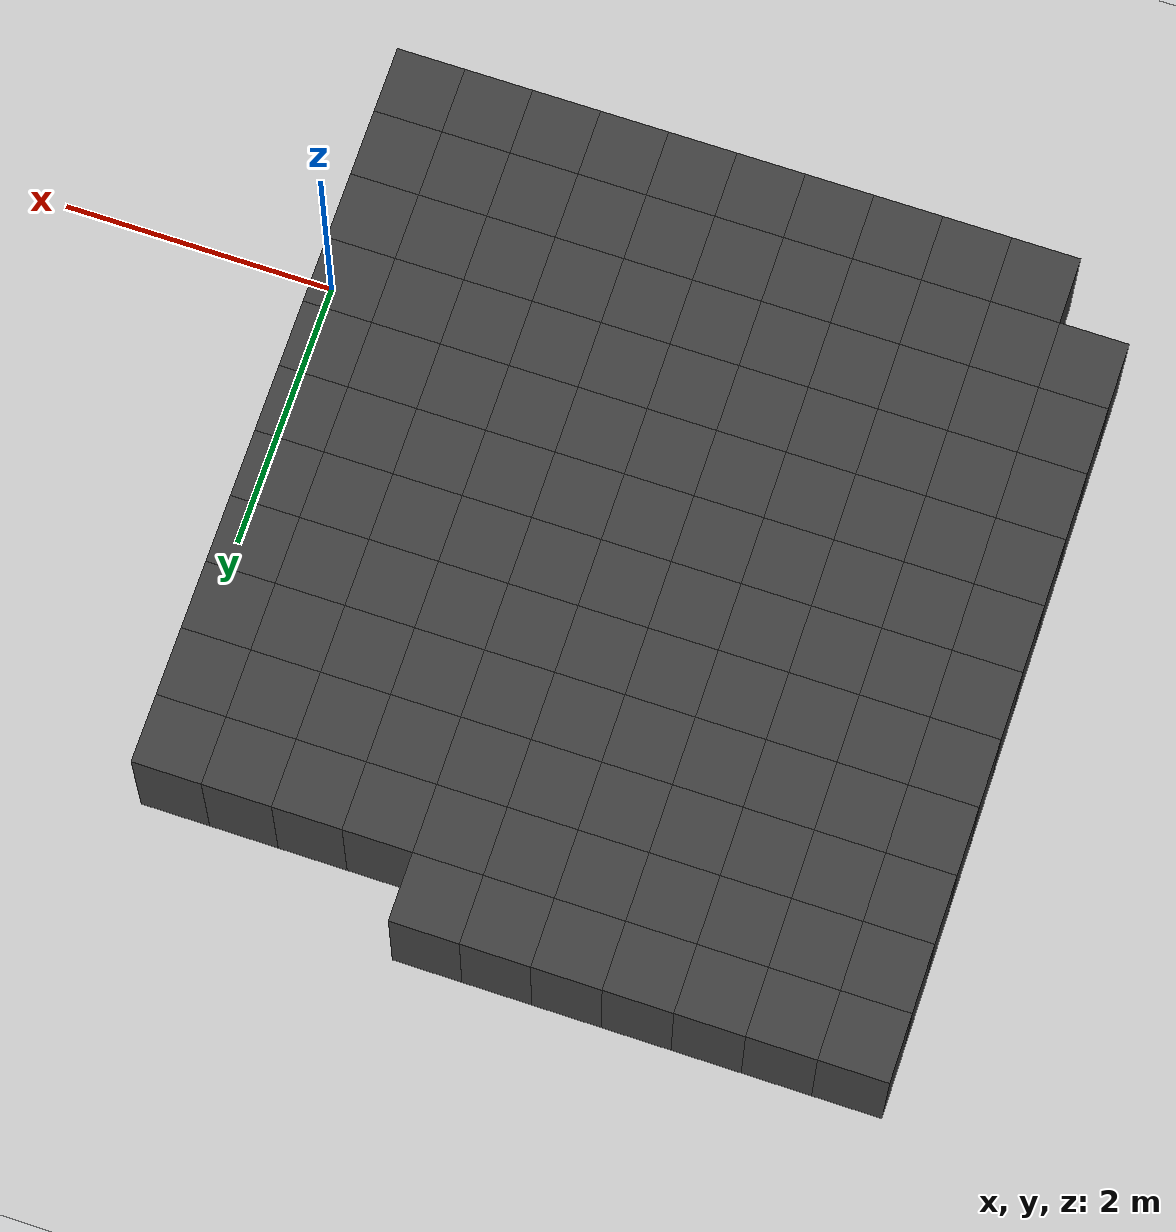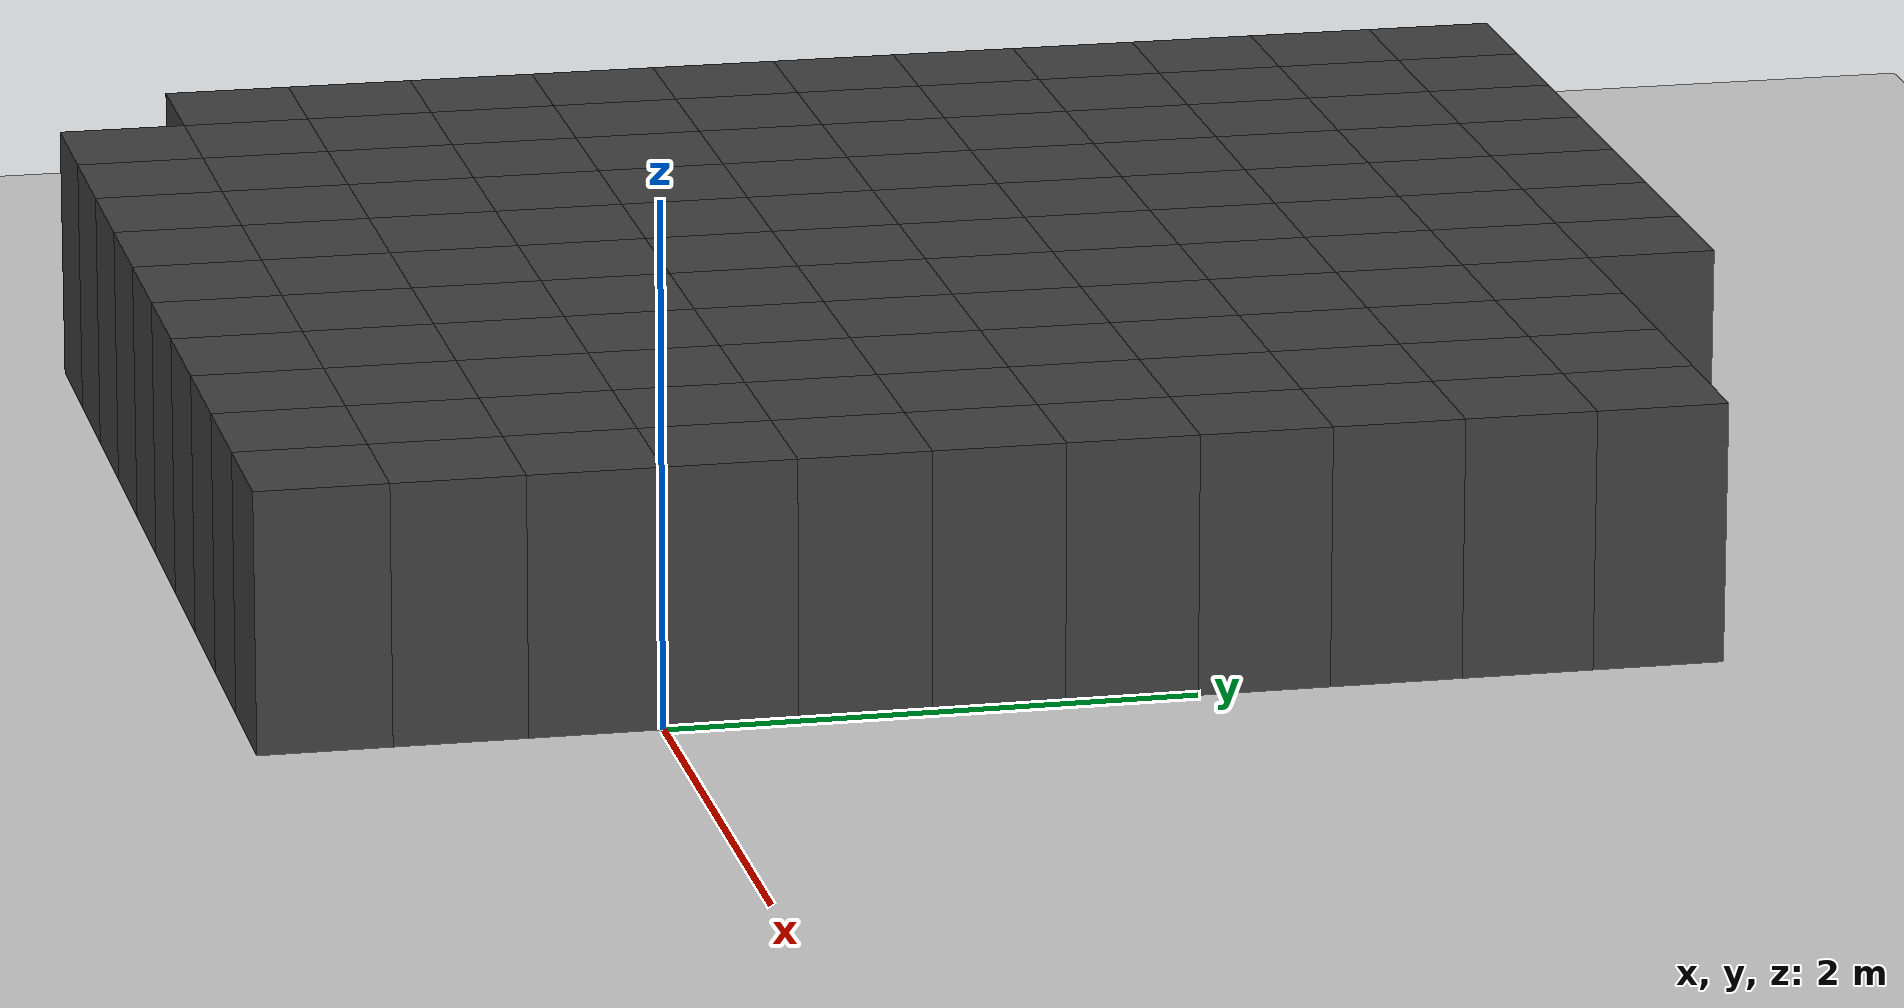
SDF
<sdf version="1.7">
 <world name="map_14056">
  <model name="ground_plane">
   <static>true</static>
   <link name="link">
    <collision name="collision">
     <geometry><plane><normal>0 0 1</normal><size>200 200</size></plane></geometry>
    </collision>
    <visual name="visual">
     <geometry><plane><normal>0 0 1</normal><size>200 200</size></plane></geometry>
     <material><ambient>0.8 0.8 0.8 1</ambient><diffuse>0.8 0.8 0.8 1</diffuse></material>
    </visual>
   </link>
  </model>
  <model name="maze_environment">
   <static>true</static>
   <link name="wall_533">
    <pose>-5.250 4.250 0.500 0 0 0</pose>
    <collision name="col"><geometry><box><size>0.5 0.5 1.0</size></box></geometry></collision>
    <visual name="vis">
     <geometry><box><size>0.5 0.5 1.0</size></box></geometry>
     <material><ambient>0.15 0.15 0.15 1</ambient><diffuse>0.25 0.25 0.25 1</diffuse></material>
    </visual>
   </link>
   <link name="wall_534">
    <pose>-4.750 4.250 0.500 0 0 0</pose>
    <collision name="col"><geometry><box><size>0.5 0.5 1.0</size></box></geometry></collision>
    <visual name="vis">
     <geometry><box><size>0.5 0.5 1.0</size></box></geometry>
     <material><ambient>0.15 0.15 0.15 1</ambient><diffuse>0.25 0.25 0.25 1</diffuse></material>
    </visual>
   </link>
   <link name="wall_535">
    <pose>-4.250 4.250 0.500 0 0 0</pose>
    <collision name="col"><geometry><box><size>0.5 0.5 1.0</size></box></geometry></collision>
    <visual name="vis">
     <geometry><box><size>0.5 0.5 1.0</size></box></geometry>
     <material><ambient>0.15 0.15 0.15 1</ambient><diffuse>0.25 0.25 0.25 1</diffuse></material>
    </visual>
   </link>
   <link name="wall_536">
    <pose>-3.750 4.250 0.500 0 0 0</pose>
    <collision name="col"><geometry><box><size>0.5 0.5 1.0</size></box></geometry></collision>
    <visual name="vis">
     <geometry><box><size>0.5 0.5 1.0</size></box></geometry>
     <material><ambient>0.15 0.15 0.15 1</ambient><diffuse>0.25 0.25 0.25 1</diffuse></material>
    </visual>
   </link>
   <link name="wall_537">
    <pose>-3.250 4.250 0.500 0 0 0</pose>
    <collision name="col"><geometry><box><size>0.5 0.5 1.0</size></box></geometry></collision>
    <visual name="vis">
     <geometry><box><size>0.5 0.5 1.0</size></box></geometry>
     <material><ambient>0.15 0.15 0.15 1</ambient><diffuse>0.25 0.25 0.25 1</diffuse></material>
    </visual>
   </link>
   <link name="wall_538">
    <pose>-2.750 4.250 0.500 0 0 0</pose>
    <collision name="col"><geometry><box><size>0.5 0.5 1.0</size></box></geometry></collision>
    <visual name="vis">
     <geometry><box><size>0.5 0.5 1.0</size></box></geometry>
     <material><ambient>0.15 0.15 0.15 1</ambient><diffuse>0.25 0.25 0.25 1</diffuse></material>
    </visual>
   </link>
   <link name="wall_539">
    <pose>-2.250 4.250 0.500 0 0 0</pose>
    <collision name="col"><geometry><box><size>0.5 0.5 1.0</size></box></geometry></collision>
    <visual name="vis">
     <geometry><box><size>0.5 0.5 1.0</size></box></geometry>
     <material><ambient>0.15 0.15 0.15 1</ambient><diffuse>0.25 0.25 0.25 1</diffuse></material>
    </visual>
   </link>
   <link name="wall_575">
    <pose>-5.250 3.750 0.500 0 0 0</pose>
    <collision name="col"><geometry><box><size>0.5 0.5 1.0</size></box></geometry></collision>
    <visual name="vis">
     <geometry><box><size>0.5 0.5 1.0</size></box></geometry>
     <material><ambient>0.15 0.15 0.15 1</ambient><diffuse>0.25 0.25 0.25 1</diffuse></material>
    </visual>
   </link>
   <link name="wall_576">
    <pose>-4.750 3.750 0.500 0 0 0</pose>
    <collision name="col"><geometry><box><size>0.5 0.5 1.0</size></box></geometry></collision>
    <visual name="vis">
     <geometry><box><size>0.5 0.5 1.0</size></box></geometry>
     <material><ambient>0.15 0.15 0.15 1</ambient><diffuse>0.25 0.25 0.25 1</diffuse></material>
    </visual>
   </link>
   <link name="wall_577">
    <pose>-4.250 3.750 0.500 0 0 0</pose>
    <collision name="col"><geometry><box><size>0.5 0.5 1.0</size></box></geometry></collision>
    <visual name="vis">
     <geometry><box><size>0.5 0.5 1.0</size></box></geometry>
     <material><ambient>0.15 0.15 0.15 1</ambient><diffuse>0.25 0.25 0.25 1</diffuse></material>
    </visual>
   </link>
   <link name="wall_578">
    <pose>-3.750 3.750 0.500 0 0 0</pose>
    <collision name="col"><geometry><box><size>0.5 0.5 1.0</size></box></geometry></collision>
    <visual name="vis">
     <geometry><box><size>0.5 0.5 1.0</size></box></geometry>
     <material><ambient>0.15 0.15 0.15 1</ambient><diffuse>0.25 0.25 0.25 1</diffuse></material>
    </visual>
   </link>
   <link name="wall_579">
    <pose>-3.250 3.750 0.500 0 0 0</pose>
    <collision name="col"><geometry><box><size>0.5 0.5 1.0</size></box></geometry></collision>
    <visual name="vis">
     <geometry><box><size>0.5 0.5 1.0</size></box></geometry>
     <material><ambient>0.15 0.15 0.15 1</ambient><diffuse>0.25 0.25 0.25 1</diffuse></material>
    </visual>
   </link>
   <link name="wall_580">
    <pose>-2.750 3.750 0.500 0 0 0</pose>
    <collision name="col"><geometry><box><size>0.5 0.5 1.0</size></box></geometry></collision>
    <visual name="vis">
     <geometry><box><size>0.5 0.5 1.0</size></box></geometry>
     <material><ambient>0.15 0.15 0.15 1</ambient><diffuse>0.25 0.25 0.25 1</diffuse></material>
    </visual>
   </link>
   <link name="wall_581">
    <pose>-2.250 3.750 0.500 0 0 0</pose>
    <collision name="col"><geometry><box><size>0.5 0.5 1.0</size></box></geometry></collision>
    <visual name="vis">
     <geometry><box><size>0.5 0.5 1.0</size></box></geometry>
     <material><ambient>0.15 0.15 0.15 1</ambient><diffuse>0.25 0.25 0.25 1</diffuse></material>
    </visual>
   </link>
   <link name="wall_582">
    <pose>-1.750 3.750 0.500 0 0 0</pose>
    <collision name="col"><geometry><box><size>0.5 0.5 1.0</size></box></geometry></collision>
    <visual name="vis">
     <geometry><box><size>0.5 0.5 1.0</size></box></geometry>
     <material><ambient>0.15 0.15 0.15 1</ambient><diffuse>0.25 0.25 0.25 1</diffuse></material>
    </visual>
   </link>
   <link name="wall_583">
    <pose>-1.250 3.750 0.500 0 0 0</pose>
    <collision name="col"><geometry><box><size>0.5 0.5 1.0</size></box></geometry></collision>
    <visual name="vis">
     <geometry><box><size>0.5 0.5 1.0</size></box></geometry>
     <material><ambient>0.15 0.15 0.15 1</ambient><diffuse>0.25 0.25 0.25 1</diffuse></material>
    </visual>
   </link>
   <link name="wall_584">
    <pose>-0.750 3.750 0.500 0 0 0</pose>
    <collision name="col"><geometry><box><size>0.5 0.5 1.0</size></box></geometry></collision>
    <visual name="vis">
     <geometry><box><size>0.5 0.5 1.0</size></box></geometry>
     <material><ambient>0.15 0.15 0.15 1</ambient><diffuse>0.25 0.25 0.25 1</diffuse></material>
    </visual>
   </link>
   <link name="wall_585">
    <pose>-0.250 3.750 0.500 0 0 0</pose>
    <collision name="col"><geometry><box><size>0.5 0.5 1.0</size></box></geometry></collision>
    <visual name="vis">
     <geometry><box><size>0.5 0.5 1.0</size></box></geometry>
     <material><ambient>0.15 0.15 0.15 1</ambient><diffuse>0.25 0.25 0.25 1</diffuse></material>
    </visual>
   </link>
   <link name="wall_612">
    <pose>-5.250 3.250 0.500 0 0 0</pose>
    <collision name="col"><geometry><box><size>0.5 0.5 1.0</size></box></geometry></collision>
    <visual name="vis">
     <geometry><box><size>0.5 0.5 1.0</size></box></geometry>
     <material><ambient>0.15 0.15 0.15 1</ambient><diffuse>0.25 0.25 0.25 1</diffuse></material>
    </visual>
   </link>
   <link name="wall_613">
    <pose>-4.750 3.250 0.500 0 0 0</pose>
    <collision name="col"><geometry><box><size>0.5 0.5 1.0</size></box></geometry></collision>
    <visual name="vis">
     <geometry><box><size>0.5 0.5 1.0</size></box></geometry>
     <material><ambient>0.15 0.15 0.15 1</ambient><diffuse>0.25 0.25 0.25 1</diffuse></material>
    </visual>
   </link>
   <link name="wall_614">
    <pose>-4.250 3.250 0.500 0 0 0</pose>
    <collision name="col"><geometry><box><size>0.5 0.5 1.0</size></box></geometry></collision>
    <visual name="vis">
     <geometry><box><size>0.5 0.5 1.0</size></box></geometry>
     <material><ambient>0.15 0.15 0.15 1</ambient><diffuse>0.25 0.25 0.25 1</diffuse></material>
    </visual>
   </link>
   <link name="wall_615">
    <pose>-3.750 3.250 0.500 0 0 0</pose>
    <collision name="col"><geometry><box><size>0.5 0.5 1.0</size></box></geometry></collision>
    <visual name="vis">
     <geometry><box><size>0.5 0.5 1.0</size></box></geometry>
     <material><ambient>0.15 0.15 0.15 1</ambient><diffuse>0.25 0.25 0.25 1</diffuse></material>
    </visual>
   </link>
   <link name="wall_616">
    <pose>-3.250 3.250 0.500 0 0 0</pose>
    <collision name="col"><geometry><box><size>0.5 0.5 1.0</size></box></geometry></collision>
    <visual name="vis">
     <geometry><box><size>0.5 0.5 1.0</size></box></geometry>
     <material><ambient>0.15 0.15 0.15 1</ambient><diffuse>0.25 0.25 0.25 1</diffuse></material>
    </visual>
   </link>
   <link name="wall_617">
    <pose>-2.750 3.250 0.500 0 0 0</pose>
    <collision name="col"><geometry><box><size>0.5 0.5 1.0</size></box></geometry></collision>
    <visual name="vis">
     <geometry><box><size>0.5 0.5 1.0</size></box></geometry>
     <material><ambient>0.15 0.15 0.15 1</ambient><diffuse>0.25 0.25 0.25 1</diffuse></material>
    </visual>
   </link>
   <link name="wall_618">
    <pose>-2.250 3.250 0.500 0 0 0</pose>
    <collision name="col"><geometry><box><size>0.5 0.5 1.0</size></box></geometry></collision>
    <visual name="vis">
     <geometry><box><size>0.5 0.5 1.0</size></box></geometry>
     <material><ambient>0.15 0.15 0.15 1</ambient><diffuse>0.25 0.25 0.25 1</diffuse></material>
    </visual>
   </link>
   <link name="wall_619">
    <pose>-1.750 3.250 0.500 0 0 0</pose>
    <collision name="col"><geometry><box><size>0.5 0.5 1.0</size></box></geometry></collision>
    <visual name="vis">
     <geometry><box><size>0.5 0.5 1.0</size></box></geometry>
     <material><ambient>0.15 0.15 0.15 1</ambient><diffuse>0.25 0.25 0.25 1</diffuse></material>
    </visual>
   </link>
   <link name="wall_620">
    <pose>-1.250 3.250 0.500 0 0 0</pose>
    <collision name="col"><geometry><box><size>0.5 0.5 1.0</size></box></geometry></collision>
    <visual name="vis">
     <geometry><box><size>0.5 0.5 1.0</size></box></geometry>
     <material><ambient>0.15 0.15 0.15 1</ambient><diffuse>0.25 0.25 0.25 1</diffuse></material>
    </visual>
   </link>
   <link name="wall_621">
    <pose>-0.750 3.250 0.500 0 0 0</pose>
    <collision name="col"><geometry><box><size>0.5 0.5 1.0</size></box></geometry></collision>
    <visual name="vis">
     <geometry><box><size>0.5 0.5 1.0</size></box></geometry>
     <material><ambient>0.15 0.15 0.15 1</ambient><diffuse>0.25 0.25 0.25 1</diffuse></material>
    </visual>
   </link>
   <link name="wall_622">
    <pose>-0.250 3.250 0.500 0 0 0</pose>
    <collision name="col"><geometry><box><size>0.5 0.5 1.0</size></box></geometry></collision>
    <visual name="vis">
     <geometry><box><size>0.5 0.5 1.0</size></box></geometry>
     <material><ambient>0.15 0.15 0.15 1</ambient><diffuse>0.25 0.25 0.25 1</diffuse></material>
    </visual>
   </link>
   <link name="wall_646">
    <pose>-5.250 2.750 0.500 0 0 0</pose>
    <collision name="col"><geometry><box><size>0.5 0.5 1.0</size></box></geometry></collision>
    <visual name="vis">
     <geometry><box><size>0.5 0.5 1.0</size></box></geometry>
     <material><ambient>0.15 0.15 0.15 1</ambient><diffuse>0.25 0.25 0.25 1</diffuse></material>
    </visual>
   </link>
   <link name="wall_647">
    <pose>-4.750 2.750 0.500 0 0 0</pose>
    <collision name="col"><geometry><box><size>0.5 0.5 1.0</size></box></geometry></collision>
    <visual name="vis">
     <geometry><box><size>0.5 0.5 1.0</size></box></geometry>
     <material><ambient>0.15 0.15 0.15 1</ambient><diffuse>0.25 0.25 0.25 1</diffuse></material>
    </visual>
   </link>
   <link name="wall_648">
    <pose>-4.250 2.750 0.500 0 0 0</pose>
    <collision name="col"><geometry><box><size>0.5 0.5 1.0</size></box></geometry></collision>
    <visual name="vis">
     <geometry><box><size>0.5 0.5 1.0</size></box></geometry>
     <material><ambient>0.15 0.15 0.15 1</ambient><diffuse>0.25 0.25 0.25 1</diffuse></material>
    </visual>
   </link>
   <link name="wall_649">
    <pose>-3.750 2.750 0.500 0 0 0</pose>
    <collision name="col"><geometry><box><size>0.5 0.5 1.0</size></box></geometry></collision>
    <visual name="vis">
     <geometry><box><size>0.5 0.5 1.0</size></box></geometry>
     <material><ambient>0.15 0.15 0.15 1</ambient><diffuse>0.25 0.25 0.25 1</diffuse></material>
    </visual>
   </link>
   <link name="wall_650">
    <pose>-3.250 2.750 0.500 0 0 0</pose>
    <collision name="col"><geometry><box><size>0.5 0.5 1.0</size></box></geometry></collision>
    <visual name="vis">
     <geometry><box><size>0.5 0.5 1.0</size></box></geometry>
     <material><ambient>0.15 0.15 0.15 1</ambient><diffuse>0.25 0.25 0.25 1</diffuse></material>
    </visual>
   </link>
   <link name="wall_651">
    <pose>-2.750 2.750 0.500 0 0 0</pose>
    <collision name="col"><geometry><box><size>0.5 0.5 1.0</size></box></geometry></collision>
    <visual name="vis">
     <geometry><box><size>0.5 0.5 1.0</size></box></geometry>
     <material><ambient>0.15 0.15 0.15 1</ambient><diffuse>0.25 0.25 0.25 1</diffuse></material>
    </visual>
   </link>
   <link name="wall_652">
    <pose>-2.250 2.750 0.500 0 0 0</pose>
    <collision name="col"><geometry><box><size>0.5 0.5 1.0</size></box></geometry></collision>
    <visual name="vis">
     <geometry><box><size>0.5 0.5 1.0</size></box></geometry>
     <material><ambient>0.15 0.15 0.15 1</ambient><diffuse>0.25 0.25 0.25 1</diffuse></material>
    </visual>
   </link>
   <link name="wall_653">
    <pose>-1.750 2.750 0.500 0 0 0</pose>
    <collision name="col"><geometry><box><size>0.5 0.5 1.0</size></box></geometry></collision>
    <visual name="vis">
     <geometry><box><size>0.5 0.5 1.0</size></box></geometry>
     <material><ambient>0.15 0.15 0.15 1</ambient><diffuse>0.25 0.25 0.25 1</diffuse></material>
    </visual>
   </link>
   <link name="wall_654">
    <pose>-1.250 2.750 0.500 0 0 0</pose>
    <collision name="col"><geometry><box><size>0.5 0.5 1.0</size></box></geometry></collision>
    <visual name="vis">
     <geometry><box><size>0.5 0.5 1.0</size></box></geometry>
     <material><ambient>0.15 0.15 0.15 1</ambient><diffuse>0.25 0.25 0.25 1</diffuse></material>
    </visual>
   </link>
   <link name="wall_655">
    <pose>-0.750 2.750 0.500 0 0 0</pose>
    <collision name="col"><geometry><box><size>0.5 0.5 1.0</size></box></geometry></collision>
    <visual name="vis">
     <geometry><box><size>0.5 0.5 1.0</size></box></geometry>
     <material><ambient>0.15 0.15 0.15 1</ambient><diffuse>0.25 0.25 0.25 1</diffuse></material>
    </visual>
   </link>
   <link name="wall_656">
    <pose>-0.250 2.750 0.500 0 0 0</pose>
    <collision name="col"><geometry><box><size>0.5 0.5 1.0</size></box></geometry></collision>
    <visual name="vis">
     <geometry><box><size>0.5 0.5 1.0</size></box></geometry>
     <material><ambient>0.15 0.15 0.15 1</ambient><diffuse>0.25 0.25 0.25 1</diffuse></material>
    </visual>
   </link>
   <link name="wall_686">
    <pose>-5.250 2.250 0.500 0 0 0</pose>
    <collision name="col"><geometry><box><size>0.5 0.5 1.0</size></box></geometry></collision>
    <visual name="vis">
     <geometry><box><size>0.5 0.5 1.0</size></box></geometry>
     <material><ambient>0.15 0.15 0.15 1</ambient><diffuse>0.25 0.25 0.25 1</diffuse></material>
    </visual>
   </link>
   <link name="wall_687">
    <pose>-4.750 2.250 0.500 0 0 0</pose>
    <collision name="col"><geometry><box><size>0.5 0.5 1.0</size></box></geometry></collision>
    <visual name="vis">
     <geometry><box><size>0.5 0.5 1.0</size></box></geometry>
     <material><ambient>0.15 0.15 0.15 1</ambient><diffuse>0.25 0.25 0.25 1</diffuse></material>
    </visual>
   </link>
   <link name="wall_688">
    <pose>-4.250 2.250 0.500 0 0 0</pose>
    <collision name="col"><geometry><box><size>0.5 0.5 1.0</size></box></geometry></collision>
    <visual name="vis">
     <geometry><box><size>0.5 0.5 1.0</size></box></geometry>
     <material><ambient>0.15 0.15 0.15 1</ambient><diffuse>0.25 0.25 0.25 1</diffuse></material>
    </visual>
   </link>
   <link name="wall_689">
    <pose>-3.750 2.250 0.500 0 0 0</pose>
    <collision name="col"><geometry><box><size>0.5 0.5 1.0</size></box></geometry></collision>
    <visual name="vis">
     <geometry><box><size>0.5 0.5 1.0</size></box></geometry>
     <material><ambient>0.15 0.15 0.15 1</ambient><diffuse>0.25 0.25 0.25 1</diffuse></material>
    </visual>
   </link>
   <link name="wall_690">
    <pose>-3.250 2.250 0.500 0 0 0</pose>
    <collision name="col"><geometry><box><size>0.5 0.5 1.0</size></box></geometry></collision>
    <visual name="vis">
     <geometry><box><size>0.5 0.5 1.0</size></box></geometry>
     <material><ambient>0.15 0.15 0.15 1</ambient><diffuse>0.25 0.25 0.25 1</diffuse></material>
    </visual>
   </link>
   <link name="wall_691">
    <pose>-2.750 2.250 0.500 0 0 0</pose>
    <collision name="col"><geometry><box><size>0.5 0.5 1.0</size></box></geometry></collision>
    <visual name="vis">
     <geometry><box><size>0.5 0.5 1.0</size></box></geometry>
     <material><ambient>0.15 0.15 0.15 1</ambient><diffuse>0.25 0.25 0.25 1</diffuse></material>
    </visual>
   </link>
   <link name="wall_692">
    <pose>-2.250 2.250 0.500 0 0 0</pose>
    <collision name="col"><geometry><box><size>0.5 0.5 1.0</size></box></geometry></collision>
    <visual name="vis">
     <geometry><box><size>0.5 0.5 1.0</size></box></geometry>
     <material><ambient>0.15 0.15 0.15 1</ambient><diffuse>0.25 0.25 0.25 1</diffuse></material>
    </visual>
   </link>
   <link name="wall_693">
    <pose>-1.750 2.250 0.500 0 0 0</pose>
    <collision name="col"><geometry><box><size>0.5 0.5 1.0</size></box></geometry></collision>
    <visual name="vis">
     <geometry><box><size>0.5 0.5 1.0</size></box></geometry>
     <material><ambient>0.15 0.15 0.15 1</ambient><diffuse>0.25 0.25 0.25 1</diffuse></material>
    </visual>
   </link>
   <link name="wall_694">
    <pose>-1.250 2.250 0.500 0 0 0</pose>
    <collision name="col"><geometry><box><size>0.5 0.5 1.0</size></box></geometry></collision>
    <visual name="vis">
     <geometry><box><size>0.5 0.5 1.0</size></box></geometry>
     <material><ambient>0.15 0.15 0.15 1</ambient><diffuse>0.25 0.25 0.25 1</diffuse></material>
    </visual>
   </link>
   <link name="wall_695">
    <pose>-0.750 2.250 0.500 0 0 0</pose>
    <collision name="col"><geometry><box><size>0.5 0.5 1.0</size></box></geometry></collision>
    <visual name="vis">
     <geometry><box><size>0.5 0.5 1.0</size></box></geometry>
     <material><ambient>0.15 0.15 0.15 1</ambient><diffuse>0.25 0.25 0.25 1</diffuse></material>
    </visual>
   </link>
   <link name="wall_696">
    <pose>-0.250 2.250 0.500 0 0 0</pose>
    <collision name="col"><geometry><box><size>0.5 0.5 1.0</size></box></geometry></collision>
    <visual name="vis">
     <geometry><box><size>0.5 0.5 1.0</size></box></geometry>
     <material><ambient>0.15 0.15 0.15 1</ambient><diffuse>0.25 0.25 0.25 1</diffuse></material>
    </visual>
   </link>
   <link name="wall_727">
    <pose>-5.250 1.750 0.500 0 0 0</pose>
    <collision name="col"><geometry><box><size>0.5 0.5 1.0</size></box></geometry></collision>
    <visual name="vis">
     <geometry><box><size>0.5 0.5 1.0</size></box></geometry>
     <material><ambient>0.15 0.15 0.15 1</ambient><diffuse>0.25 0.25 0.25 1</diffuse></material>
    </visual>
   </link>
   <link name="wall_728">
    <pose>-4.750 1.750 0.500 0 0 0</pose>
    <collision name="col"><geometry><box><size>0.5 0.5 1.0</size></box></geometry></collision>
    <visual name="vis">
     <geometry><box><size>0.5 0.5 1.0</size></box></geometry>
     <material><ambient>0.15 0.15 0.15 1</ambient><diffuse>0.25 0.25 0.25 1</diffuse></material>
    </visual>
   </link>
   <link name="wall_729">
    <pose>-4.250 1.750 0.500 0 0 0</pose>
    <collision name="col"><geometry><box><size>0.5 0.5 1.0</size></box></geometry></collision>
    <visual name="vis">
     <geometry><box><size>0.5 0.5 1.0</size></box></geometry>
     <material><ambient>0.15 0.15 0.15 1</ambient><diffuse>0.25 0.25 0.25 1</diffuse></material>
    </visual>
   </link>
   <link name="wall_730">
    <pose>-3.750 1.750 0.500 0 0 0</pose>
    <collision name="col"><geometry><box><size>0.5 0.5 1.0</size></box></geometry></collision>
    <visual name="vis">
     <geometry><box><size>0.5 0.5 1.0</size></box></geometry>
     <material><ambient>0.15 0.15 0.15 1</ambient><diffuse>0.25 0.25 0.25 1</diffuse></material>
    </visual>
   </link>
   <link name="wall_731">
    <pose>-3.250 1.750 0.500 0 0 0</pose>
    <collision name="col"><geometry><box><size>0.5 0.5 1.0</size></box></geometry></collision>
    <visual name="vis">
     <geometry><box><size>0.5 0.5 1.0</size></box></geometry>
     <material><ambient>0.15 0.15 0.15 1</ambient><diffuse>0.25 0.25 0.25 1</diffuse></material>
    </visual>
   </link>
   <link name="wall_732">
    <pose>-2.750 1.750 0.500 0 0 0</pose>
    <collision name="col"><geometry><box><size>0.5 0.5 1.0</size></box></geometry></collision>
    <visual name="vis">
     <geometry><box><size>0.5 0.5 1.0</size></box></geometry>
     <material><ambient>0.15 0.15 0.15 1</ambient><diffuse>0.25 0.25 0.25 1</diffuse></material>
    </visual>
   </link>
   <link name="wall_733">
    <pose>-2.250 1.750 0.500 0 0 0</pose>
    <collision name="col"><geometry><box><size>0.5 0.5 1.0</size></box></geometry></collision>
    <visual name="vis">
     <geometry><box><size>0.5 0.5 1.0</size></box></geometry>
     <material><ambient>0.15 0.15 0.15 1</ambient><diffuse>0.25 0.25 0.25 1</diffuse></material>
    </visual>
   </link>
   <link name="wall_734">
    <pose>-1.750 1.750 0.500 0 0 0</pose>
    <collision name="col"><geometry><box><size>0.5 0.5 1.0</size></box></geometry></collision>
    <visual name="vis">
     <geometry><box><size>0.5 0.5 1.0</size></box></geometry>
     <material><ambient>0.15 0.15 0.15 1</ambient><diffuse>0.25 0.25 0.25 1</diffuse></material>
    </visual>
   </link>
   <link name="wall_735">
    <pose>-1.250 1.750 0.500 0 0 0</pose>
    <collision name="col"><geometry><box><size>0.5 0.5 1.0</size></box></geometry></collision>
    <visual name="vis">
     <geometry><box><size>0.5 0.5 1.0</size></box></geometry>
     <material><ambient>0.15 0.15 0.15 1</ambient><diffuse>0.25 0.25 0.25 1</diffuse></material>
    </visual>
   </link>
   <link name="wall_736">
    <pose>-0.750 1.750 0.500 0 0 0</pose>
    <collision name="col"><geometry><box><size>0.5 0.5 1.0</size></box></geometry></collision>
    <visual name="vis">
     <geometry><box><size>0.5 0.5 1.0</size></box></geometry>
     <material><ambient>0.15 0.15 0.15 1</ambient><diffuse>0.25 0.25 0.25 1</diffuse></material>
    </visual>
   </link>
   <link name="wall_737">
    <pose>-0.250 1.750 0.500 0 0 0</pose>
    <collision name="col"><geometry><box><size>0.5 0.5 1.0</size></box></geometry></collision>
    <visual name="vis">
     <geometry><box><size>0.5 0.5 1.0</size></box></geometry>
     <material><ambient>0.15 0.15 0.15 1</ambient><diffuse>0.25 0.25 0.25 1</diffuse></material>
    </visual>
   </link>
   <link name="wall_768">
    <pose>-5.250 1.250 0.500 0 0 0</pose>
    <collision name="col"><geometry><box><size>0.5 0.5 1.0</size></box></geometry></collision>
    <visual name="vis">
     <geometry><box><size>0.5 0.5 1.0</size></box></geometry>
     <material><ambient>0.15 0.15 0.15 1</ambient><diffuse>0.25 0.25 0.25 1</diffuse></material>
    </visual>
   </link>
   <link name="wall_769">
    <pose>-4.750 1.250 0.500 0 0 0</pose>
    <collision name="col"><geometry><box><size>0.5 0.5 1.0</size></box></geometry></collision>
    <visual name="vis">
     <geometry><box><size>0.5 0.5 1.0</size></box></geometry>
     <material><ambient>0.15 0.15 0.15 1</ambient><diffuse>0.25 0.25 0.25 1</diffuse></material>
    </visual>
   </link>
   <link name="wall_770">
    <pose>-4.250 1.250 0.500 0 0 0</pose>
    <collision name="col"><geometry><box><size>0.5 0.5 1.0</size></box></geometry></collision>
    <visual name="vis">
     <geometry><box><size>0.5 0.5 1.0</size></box></geometry>
     <material><ambient>0.15 0.15 0.15 1</ambient><diffuse>0.25 0.25 0.25 1</diffuse></material>
    </visual>
   </link>
   <link name="wall_771">
    <pose>-3.750 1.250 0.500 0 0 0</pose>
    <collision name="col"><geometry><box><size>0.5 0.5 1.0</size></box></geometry></collision>
    <visual name="vis">
     <geometry><box><size>0.5 0.5 1.0</size></box></geometry>
     <material><ambient>0.15 0.15 0.15 1</ambient><diffuse>0.25 0.25 0.25 1</diffuse></material>
    </visual>
   </link>
   <link name="wall_772">
    <pose>-3.250 1.250 0.500 0 0 0</pose>
    <collision name="col"><geometry><box><size>0.5 0.5 1.0</size></box></geometry></collision>
    <visual name="vis">
     <geometry><box><size>0.5 0.5 1.0</size></box></geometry>
     <material><ambient>0.15 0.15 0.15 1</ambient><diffuse>0.25 0.25 0.25 1</diffuse></material>
    </visual>
   </link>
   <link name="wall_773">
    <pose>-2.750 1.250 0.500 0 0 0</pose>
    <collision name="col"><geometry><box><size>0.5 0.5 1.0</size></box></geometry></collision>
    <visual name="vis">
     <geometry><box><size>0.5 0.5 1.0</size></box></geometry>
     <material><ambient>0.15 0.15 0.15 1</ambient><diffuse>0.25 0.25 0.25 1</diffuse></material>
    </visual>
   </link>
   <link name="wall_774">
    <pose>-2.250 1.250 0.500 0 0 0</pose>
    <collision name="col"><geometry><box><size>0.5 0.5 1.0</size></box></geometry></collision>
    <visual name="vis">
     <geometry><box><size>0.5 0.5 1.0</size></box></geometry>
     <material><ambient>0.15 0.15 0.15 1</ambient><diffuse>0.25 0.25 0.25 1</diffuse></material>
    </visual>
   </link>
   <link name="wall_775">
    <pose>-1.750 1.250 0.500 0 0 0</pose>
    <collision name="col"><geometry><box><size>0.5 0.5 1.0</size></box></geometry></collision>
    <visual name="vis">
     <geometry><box><size>0.5 0.5 1.0</size></box></geometry>
     <material><ambient>0.15 0.15 0.15 1</ambient><diffuse>0.25 0.25 0.25 1</diffuse></material>
    </visual>
   </link>
   <link name="wall_776">
    <pose>-1.250 1.250 0.500 0 0 0</pose>
    <collision name="col"><geometry><box><size>0.5 0.5 1.0</size></box></geometry></collision>
    <visual name="vis">
     <geometry><box><size>0.5 0.5 1.0</size></box></geometry>
     <material><ambient>0.15 0.15 0.15 1</ambient><diffuse>0.25 0.25 0.25 1</diffuse></material>
    </visual>
   </link>
   <link name="wall_777">
    <pose>-0.750 1.250 0.500 0 0 0</pose>
    <collision name="col"><geometry><box><size>0.5 0.5 1.0</size></box></geometry></collision>
    <visual name="vis">
     <geometry><box><size>0.5 0.5 1.0</size></box></geometry>
     <material><ambient>0.15 0.15 0.15 1</ambient><diffuse>0.25 0.25 0.25 1</diffuse></material>
    </visual>
   </link>
   <link name="wall_778">
    <pose>-0.250 1.250 0.500 0 0 0</pose>
    <collision name="col"><geometry><box><size>0.5 0.5 1.0</size></box></geometry></collision>
    <visual name="vis">
     <geometry><box><size>0.5 0.5 1.0</size></box></geometry>
     <material><ambient>0.15 0.15 0.15 1</ambient><diffuse>0.25 0.25 0.25 1</diffuse></material>
    </visual>
   </link>
   <link name="wall_809">
    <pose>-5.250 0.750 0.500 0 0 0</pose>
    <collision name="col"><geometry><box><size>0.5 0.5 1.0</size></box></geometry></collision>
    <visual name="vis">
     <geometry><box><size>0.5 0.5 1.0</size></box></geometry>
     <material><ambient>0.15 0.15 0.15 1</ambient><diffuse>0.25 0.25 0.25 1</diffuse></material>
    </visual>
   </link>
   <link name="wall_810">
    <pose>-4.750 0.750 0.500 0 0 0</pose>
    <collision name="col"><geometry><box><size>0.5 0.5 1.0</size></box></geometry></collision>
    <visual name="vis">
     <geometry><box><size>0.5 0.5 1.0</size></box></geometry>
     <material><ambient>0.15 0.15 0.15 1</ambient><diffuse>0.25 0.25 0.25 1</diffuse></material>
    </visual>
   </link>
   <link name="wall_811">
    <pose>-4.250 0.750 0.500 0 0 0</pose>
    <collision name="col"><geometry><box><size>0.5 0.5 1.0</size></box></geometry></collision>
    <visual name="vis">
     <geometry><box><size>0.5 0.5 1.0</size></box></geometry>
     <material><ambient>0.15 0.15 0.15 1</ambient><diffuse>0.25 0.25 0.25 1</diffuse></material>
    </visual>
   </link>
   <link name="wall_812">
    <pose>-3.750 0.750 0.500 0 0 0</pose>
    <collision name="col"><geometry><box><size>0.5 0.5 1.0</size></box></geometry></collision>
    <visual name="vis">
     <geometry><box><size>0.5 0.5 1.0</size></box></geometry>
     <material><ambient>0.15 0.15 0.15 1</ambient><diffuse>0.25 0.25 0.25 1</diffuse></material>
    </visual>
   </link>
   <link name="wall_813">
    <pose>-3.250 0.750 0.500 0 0 0</pose>
    <collision name="col"><geometry><box><size>0.5 0.5 1.0</size></box></geometry></collision>
    <visual name="vis">
     <geometry><box><size>0.5 0.5 1.0</size></box></geometry>
     <material><ambient>0.15 0.15 0.15 1</ambient><diffuse>0.25 0.25 0.25 1</diffuse></material>
    </visual>
   </link>
   <link name="wall_814">
    <pose>-2.750 0.750 0.500 0 0 0</pose>
    <collision name="col"><geometry><box><size>0.5 0.5 1.0</size></box></geometry></collision>
    <visual name="vis">
     <geometry><box><size>0.5 0.5 1.0</size></box></geometry>
     <material><ambient>0.15 0.15 0.15 1</ambient><diffuse>0.25 0.25 0.25 1</diffuse></material>
    </visual>
   </link>
   <link name="wall_815">
    <pose>-2.250 0.750 0.500 0 0 0</pose>
    <collision name="col"><geometry><box><size>0.5 0.5 1.0</size></box></geometry></collision>
    <visual name="vis">
     <geometry><box><size>0.5 0.5 1.0</size></box></geometry>
     <material><ambient>0.15 0.15 0.15 1</ambient><diffuse>0.25 0.25 0.25 1</diffuse></material>
    </visual>
   </link>
   <link name="wall_816">
    <pose>-1.750 0.750 0.500 0 0 0</pose>
    <collision name="col"><geometry><box><size>0.5 0.5 1.0</size></box></geometry></collision>
    <visual name="vis">
     <geometry><box><size>0.5 0.5 1.0</size></box></geometry>
     <material><ambient>0.15 0.15 0.15 1</ambient><diffuse>0.25 0.25 0.25 1</diffuse></material>
    </visual>
   </link>
   <link name="wall_817">
    <pose>-1.250 0.750 0.500 0 0 0</pose>
    <collision name="col"><geometry><box><size>0.5 0.5 1.0</size></box></geometry></collision>
    <visual name="vis">
     <geometry><box><size>0.5 0.5 1.0</size></box></geometry>
     <material><ambient>0.15 0.15 0.15 1</ambient><diffuse>0.25 0.25 0.25 1</diffuse></material>
    </visual>
   </link>
   <link name="wall_818">
    <pose>-0.750 0.750 0.500 0 0 0</pose>
    <collision name="col"><geometry><box><size>0.5 0.5 1.0</size></box></geometry></collision>
    <visual name="vis">
     <geometry><box><size>0.5 0.5 1.0</size></box></geometry>
     <material><ambient>0.15 0.15 0.15 1</ambient><diffuse>0.25 0.25 0.25 1</diffuse></material>
    </visual>
   </link>
   <link name="wall_819">
    <pose>-0.250 0.750 0.500 0 0 0</pose>
    <collision name="col"><geometry><box><size>0.5 0.5 1.0</size></box></geometry></collision>
    <visual name="vis">
     <geometry><box><size>0.5 0.5 1.0</size></box></geometry>
     <material><ambient>0.15 0.15 0.15 1</ambient><diffuse>0.25 0.25 0.25 1</diffuse></material>
    </visual>
   </link>
   <link name="wall_850">
    <pose>-5.250 0.250 0.500 0 0 0</pose>
    <collision name="col"><geometry><box><size>0.5 0.5 1.0</size></box></geometry></collision>
    <visual name="vis">
     <geometry><box><size>0.5 0.5 1.0</size></box></geometry>
     <material><ambient>0.15 0.15 0.15 1</ambient><diffuse>0.25 0.25 0.25 1</diffuse></material>
    </visual>
   </link>
   <link name="wall_851">
    <pose>-4.750 0.250 0.500 0 0 0</pose>
    <collision name="col"><geometry><box><size>0.5 0.5 1.0</size></box></geometry></collision>
    <visual name="vis">
     <geometry><box><size>0.5 0.5 1.0</size></box></geometry>
     <material><ambient>0.15 0.15 0.15 1</ambient><diffuse>0.25 0.25 0.25 1</diffuse></material>
    </visual>
   </link>
   <link name="wall_852">
    <pose>-4.250 0.250 0.500 0 0 0</pose>
    <collision name="col"><geometry><box><size>0.5 0.5 1.0</size></box></geometry></collision>
    <visual name="vis">
     <geometry><box><size>0.5 0.5 1.0</size></box></geometry>
     <material><ambient>0.15 0.15 0.15 1</ambient><diffuse>0.25 0.25 0.25 1</diffuse></material>
    </visual>
   </link>
   <link name="wall_853">
    <pose>-3.750 0.250 0.500 0 0 0</pose>
    <collision name="col"><geometry><box><size>0.5 0.5 1.0</size></box></geometry></collision>
    <visual name="vis">
     <geometry><box><size>0.5 0.5 1.0</size></box></geometry>
     <material><ambient>0.15 0.15 0.15 1</ambient><diffuse>0.25 0.25 0.25 1</diffuse></material>
    </visual>
   </link>
   <link name="wall_854">
    <pose>-3.250 0.250 0.500 0 0 0</pose>
    <collision name="col"><geometry><box><size>0.5 0.5 1.0</size></box></geometry></collision>
    <visual name="vis">
     <geometry><box><size>0.5 0.5 1.0</size></box></geometry>
     <material><ambient>0.15 0.15 0.15 1</ambient><diffuse>0.25 0.25 0.25 1</diffuse></material>
    </visual>
   </link>
   <link name="wall_855">
    <pose>-2.750 0.250 0.500 0 0 0</pose>
    <collision name="col"><geometry><box><size>0.5 0.5 1.0</size></box></geometry></collision>
    <visual name="vis">
     <geometry><box><size>0.5 0.5 1.0</size></box></geometry>
     <material><ambient>0.15 0.15 0.15 1</ambient><diffuse>0.25 0.25 0.25 1</diffuse></material>
    </visual>
   </link>
   <link name="wall_856">
    <pose>-2.250 0.250 0.500 0 0 0</pose>
    <collision name="col"><geometry><box><size>0.5 0.5 1.0</size></box></geometry></collision>
    <visual name="vis">
     <geometry><box><size>0.5 0.5 1.0</size></box></geometry>
     <material><ambient>0.15 0.15 0.15 1</ambient><diffuse>0.25 0.25 0.25 1</diffuse></material>
    </visual>
   </link>
   <link name="wall_857">
    <pose>-1.750 0.250 0.500 0 0 0</pose>
    <collision name="col"><geometry><box><size>0.5 0.5 1.0</size></box></geometry></collision>
    <visual name="vis">
     <geometry><box><size>0.5 0.5 1.0</size></box></geometry>
     <material><ambient>0.15 0.15 0.15 1</ambient><diffuse>0.25 0.25 0.25 1</diffuse></material>
    </visual>
   </link>
   <link name="wall_858">
    <pose>-1.250 0.250 0.500 0 0 0</pose>
    <collision name="col"><geometry><box><size>0.5 0.5 1.0</size></box></geometry></collision>
    <visual name="vis">
     <geometry><box><size>0.5 0.5 1.0</size></box></geometry>
     <material><ambient>0.15 0.15 0.15 1</ambient><diffuse>0.25 0.25 0.25 1</diffuse></material>
    </visual>
   </link>
   <link name="wall_859">
    <pose>-0.750 0.250 0.500 0 0 0</pose>
    <collision name="col"><geometry><box><size>0.5 0.5 1.0</size></box></geometry></collision>
    <visual name="vis">
     <geometry><box><size>0.5 0.5 1.0</size></box></geometry>
     <material><ambient>0.15 0.15 0.15 1</ambient><diffuse>0.25 0.25 0.25 1</diffuse></material>
    </visual>
   </link>
   <link name="wall_860">
    <pose>-0.250 0.250 0.500 0 0 0</pose>
    <collision name="col"><geometry><box><size>0.5 0.5 1.0</size></box></geometry></collision>
    <visual name="vis">
     <geometry><box><size>0.5 0.5 1.0</size></box></geometry>
     <material><ambient>0.15 0.15 0.15 1</ambient><diffuse>0.25 0.25 0.25 1</diffuse></material>
    </visual>
   </link>
   <link name="wall_891">
    <pose>-5.250 -0.250 0.500 0 0 0</pose>
    <collision name="col"><geometry><box><size>0.5 0.5 1.0</size></box></geometry></collision>
    <visual name="vis">
     <geometry><box><size>0.5 0.5 1.0</size></box></geometry>
     <material><ambient>0.15 0.15 0.15 1</ambient><diffuse>0.25 0.25 0.25 1</diffuse></material>
    </visual>
   </link>
   <link name="wall_892">
    <pose>-4.750 -0.250 0.500 0 0 0</pose>
    <collision name="col"><geometry><box><size>0.5 0.5 1.0</size></box></geometry></collision>
    <visual name="vis">
     <geometry><box><size>0.5 0.5 1.0</size></box></geometry>
     <material><ambient>0.15 0.15 0.15 1</ambient><diffuse>0.25 0.25 0.25 1</diffuse></material>
    </visual>
   </link>
   <link name="wall_893">
    <pose>-4.250 -0.250 0.500 0 0 0</pose>
    <collision name="col"><geometry><box><size>0.5 0.5 1.0</size></box></geometry></collision>
    <visual name="vis">
     <geometry><box><size>0.5 0.5 1.0</size></box></geometry>
     <material><ambient>0.15 0.15 0.15 1</ambient><diffuse>0.25 0.25 0.25 1</diffuse></material>
    </visual>
   </link>
   <link name="wall_894">
    <pose>-3.750 -0.250 0.500 0 0 0</pose>
    <collision name="col"><geometry><box><size>0.5 0.5 1.0</size></box></geometry></collision>
    <visual name="vis">
     <geometry><box><size>0.5 0.5 1.0</size></box></geometry>
     <material><ambient>0.15 0.15 0.15 1</ambient><diffuse>0.25 0.25 0.25 1</diffuse></material>
    </visual>
   </link>
   <link name="wall_895">
    <pose>-3.250 -0.250 0.500 0 0 0</pose>
    <collision name="col"><geometry><box><size>0.5 0.5 1.0</size></box></geometry></collision>
    <visual name="vis">
     <geometry><box><size>0.5 0.5 1.0</size></box></geometry>
     <material><ambient>0.15 0.15 0.15 1</ambient><diffuse>0.25 0.25 0.25 1</diffuse></material>
    </visual>
   </link>
   <link name="wall_896">
    <pose>-2.750 -0.250 0.500 0 0 0</pose>
    <collision name="col"><geometry><box><size>0.5 0.5 1.0</size></box></geometry></collision>
    <visual name="vis">
     <geometry><box><size>0.5 0.5 1.0</size></box></geometry>
     <material><ambient>0.15 0.15 0.15 1</ambient><diffuse>0.25 0.25 0.25 1</diffuse></material>
    </visual>
   </link>
   <link name="wall_897">
    <pose>-2.250 -0.250 0.500 0 0 0</pose>
    <collision name="col"><geometry><box><size>0.5 0.5 1.0</size></box></geometry></collision>
    <visual name="vis">
     <geometry><box><size>0.5 0.5 1.0</size></box></geometry>
     <material><ambient>0.15 0.15 0.15 1</ambient><diffuse>0.25 0.25 0.25 1</diffuse></material>
    </visual>
   </link>
   <link name="wall_898">
    <pose>-1.750 -0.250 0.500 0 0 0</pose>
    <collision name="col"><geometry><box><size>0.5 0.5 1.0</size></box></geometry></collision>
    <visual name="vis">
     <geometry><box><size>0.5 0.5 1.0</size></box></geometry>
     <material><ambient>0.15 0.15 0.15 1</ambient><diffuse>0.25 0.25 0.25 1</diffuse></material>
    </visual>
   </link>
   <link name="wall_899">
    <pose>-1.250 -0.250 0.500 0 0 0</pose>
    <collision name="col"><geometry><box><size>0.5 0.5 1.0</size></box></geometry></collision>
    <visual name="vis">
     <geometry><box><size>0.5 0.5 1.0</size></box></geometry>
     <material><ambient>0.15 0.15 0.15 1</ambient><diffuse>0.25 0.25 0.25 1</diffuse></material>
    </visual>
   </link>
   <link name="wall_900">
    <pose>-0.750 -0.250 0.500 0 0 0</pose>
    <collision name="col"><geometry><box><size>0.5 0.5 1.0</size></box></geometry></collision>
    <visual name="vis">
     <geometry><box><size>0.5 0.5 1.0</size></box></geometry>
     <material><ambient>0.15 0.15 0.15 1</ambient><diffuse>0.25 0.25 0.25 1</diffuse></material>
    </visual>
   </link>
   <link name="wall_901">
    <pose>-0.250 -0.250 0.500 0 0 0</pose>
    <collision name="col"><geometry><box><size>0.5 0.5 1.0</size></box></geometry></collision>
    <visual name="vis">
     <geometry><box><size>0.5 0.5 1.0</size></box></geometry>
     <material><ambient>0.15 0.15 0.15 1</ambient><diffuse>0.25 0.25 0.25 1</diffuse></material>
    </visual>
   </link>
   <link name="wall_932">
    <pose>-5.250 -0.750 0.500 0 0 0</pose>
    <collision name="col"><geometry><box><size>0.5 0.5 1.0</size></box></geometry></collision>
    <visual name="vis">
     <geometry><box><size>0.5 0.5 1.0</size></box></geometry>
     <material><ambient>0.15 0.15 0.15 1</ambient><diffuse>0.25 0.25 0.25 1</diffuse></material>
    </visual>
   </link>
   <link name="wall_933">
    <pose>-4.750 -0.750 0.500 0 0 0</pose>
    <collision name="col"><geometry><box><size>0.5 0.5 1.0</size></box></geometry></collision>
    <visual name="vis">
     <geometry><box><size>0.5 0.5 1.0</size></box></geometry>
     <material><ambient>0.15 0.15 0.15 1</ambient><diffuse>0.25 0.25 0.25 1</diffuse></material>
    </visual>
   </link>
   <link name="wall_934">
    <pose>-4.250 -0.750 0.500 0 0 0</pose>
    <collision name="col"><geometry><box><size>0.5 0.5 1.0</size></box></geometry></collision>
    <visual name="vis">
     <geometry><box><size>0.5 0.5 1.0</size></box></geometry>
     <material><ambient>0.15 0.15 0.15 1</ambient><diffuse>0.25 0.25 0.25 1</diffuse></material>
    </visual>
   </link>
   <link name="wall_935">
    <pose>-3.750 -0.750 0.500 0 0 0</pose>
    <collision name="col"><geometry><box><size>0.5 0.5 1.0</size></box></geometry></collision>
    <visual name="vis">
     <geometry><box><size>0.5 0.5 1.0</size></box></geometry>
     <material><ambient>0.15 0.15 0.15 1</ambient><diffuse>0.25 0.25 0.25 1</diffuse></material>
    </visual>
   </link>
   <link name="wall_936">
    <pose>-3.250 -0.750 0.500 0 0 0</pose>
    <collision name="col"><geometry><box><size>0.5 0.5 1.0</size></box></geometry></collision>
    <visual name="vis">
     <geometry><box><size>0.5 0.5 1.0</size></box></geometry>
     <material><ambient>0.15 0.15 0.15 1</ambient><diffuse>0.25 0.25 0.25 1</diffuse></material>
    </visual>
   </link>
   <link name="wall_937">
    <pose>-2.750 -0.750 0.500 0 0 0</pose>
    <collision name="col"><geometry><box><size>0.5 0.5 1.0</size></box></geometry></collision>
    <visual name="vis">
     <geometry><box><size>0.5 0.5 1.0</size></box></geometry>
     <material><ambient>0.15 0.15 0.15 1</ambient><diffuse>0.25 0.25 0.25 1</diffuse></material>
    </visual>
   </link>
   <link name="wall_938">
    <pose>-2.250 -0.750 0.500 0 0 0</pose>
    <collision name="col"><geometry><box><size>0.5 0.5 1.0</size></box></geometry></collision>
    <visual name="vis">
     <geometry><box><size>0.5 0.5 1.0</size></box></geometry>
     <material><ambient>0.15 0.15 0.15 1</ambient><diffuse>0.25 0.25 0.25 1</diffuse></material>
    </visual>
   </link>
   <link name="wall_939">
    <pose>-1.750 -0.750 0.500 0 0 0</pose>
    <collision name="col"><geometry><box><size>0.5 0.5 1.0</size></box></geometry></collision>
    <visual name="vis">
     <geometry><box><size>0.5 0.5 1.0</size></box></geometry>
     <material><ambient>0.15 0.15 0.15 1</ambient><diffuse>0.25 0.25 0.25 1</diffuse></material>
    </visual>
   </link>
   <link name="wall_940">
    <pose>-1.250 -0.750 0.500 0 0 0</pose>
    <collision name="col"><geometry><box><size>0.5 0.5 1.0</size></box></geometry></collision>
    <visual name="vis">
     <geometry><box><size>0.5 0.5 1.0</size></box></geometry>
     <material><ambient>0.15 0.15 0.15 1</ambient><diffuse>0.25 0.25 0.25 1</diffuse></material>
    </visual>
   </link>
   <link name="wall_941">
    <pose>-0.750 -0.750 0.500 0 0 0</pose>
    <collision name="col"><geometry><box><size>0.5 0.5 1.0</size></box></geometry></collision>
    <visual name="vis">
     <geometry><box><size>0.5 0.5 1.0</size></box></geometry>
     <material><ambient>0.15 0.15 0.15 1</ambient><diffuse>0.25 0.25 0.25 1</diffuse></material>
    </visual>
   </link>
   <link name="wall_942">
    <pose>-0.250 -0.750 0.500 0 0 0</pose>
    <collision name="col"><geometry><box><size>0.5 0.5 1.0</size></box></geometry></collision>
    <visual name="vis">
     <geometry><box><size>0.5 0.5 1.0</size></box></geometry>
     <material><ambient>0.15 0.15 0.15 1</ambient><diffuse>0.25 0.25 0.25 1</diffuse></material>
    </visual>
   </link>
   <link name="wall_974">
    <pose>-4.750 -1.250 0.500 0 0 0</pose>
    <collision name="col"><geometry><box><size>0.5 0.5 1.0</size></box></geometry></collision>
    <visual name="vis">
     <geometry><box><size>0.5 0.5 1.0</size></box></geometry>
     <material><ambient>0.15 0.15 0.15 1</ambient><diffuse>0.25 0.25 0.25 1</diffuse></material>
    </visual>
   </link>
   <link name="wall_975">
    <pose>-4.250 -1.250 0.500 0 0 0</pose>
    <collision name="col"><geometry><box><size>0.5 0.5 1.0</size></box></geometry></collision>
    <visual name="vis">
     <geometry><box><size>0.5 0.5 1.0</size></box></geometry>
     <material><ambient>0.15 0.15 0.15 1</ambient><diffuse>0.25 0.25 0.25 1</diffuse></material>
    </visual>
   </link>
   <link name="wall_976">
    <pose>-3.750 -1.250 0.500 0 0 0</pose>
    <collision name="col"><geometry><box><size>0.5 0.5 1.0</size></box></geometry></collision>
    <visual name="vis">
     <geometry><box><size>0.5 0.5 1.0</size></box></geometry>
     <material><ambient>0.15 0.15 0.15 1</ambient><diffuse>0.25 0.25 0.25 1</diffuse></material>
    </visual>
   </link>
   <link name="wall_977">
    <pose>-3.250 -1.250 0.500 0 0 0</pose>
    <collision name="col"><geometry><box><size>0.5 0.5 1.0</size></box></geometry></collision>
    <visual name="vis">
     <geometry><box><size>0.5 0.5 1.0</size></box></geometry>
     <material><ambient>0.15 0.15 0.15 1</ambient><diffuse>0.25 0.25 0.25 1</diffuse></material>
    </visual>
   </link>
   <link name="wall_978">
    <pose>-2.750 -1.250 0.500 0 0 0</pose>
    <collision name="col"><geometry><box><size>0.5 0.5 1.0</size></box></geometry></collision>
    <visual name="vis">
     <geometry><box><size>0.5 0.5 1.0</size></box></geometry>
     <material><ambient>0.15 0.15 0.15 1</ambient><diffuse>0.25 0.25 0.25 1</diffuse></material>
    </visual>
   </link>
   <link name="wall_979">
    <pose>-2.250 -1.250 0.500 0 0 0</pose>
    <collision name="col"><geometry><box><size>0.5 0.5 1.0</size></box></geometry></collision>
    <visual name="vis">
     <geometry><box><size>0.5 0.5 1.0</size></box></geometry>
     <material><ambient>0.15 0.15 0.15 1</ambient><diffuse>0.25 0.25 0.25 1</diffuse></material>
    </visual>
   </link>
   <link name="wall_980">
    <pose>-1.750 -1.250 0.500 0 0 0</pose>
    <collision name="col"><geometry><box><size>0.5 0.5 1.0</size></box></geometry></collision>
    <visual name="vis">
     <geometry><box><size>0.5 0.5 1.0</size></box></geometry>
     <material><ambient>0.15 0.15 0.15 1</ambient><diffuse>0.25 0.25 0.25 1</diffuse></material>
    </visual>
   </link>
   <link name="wall_981">
    <pose>-1.250 -1.250 0.500 0 0 0</pose>
    <collision name="col"><geometry><box><size>0.5 0.5 1.0</size></box></geometry></collision>
    <visual name="vis">
     <geometry><box><size>0.5 0.5 1.0</size></box></geometry>
     <material><ambient>0.15 0.15 0.15 1</ambient><diffuse>0.25 0.25 0.25 1</diffuse></material>
    </visual>
   </link>
   <link name="wall_982">
    <pose>-0.750 -1.250 0.500 0 0 0</pose>
    <collision name="col"><geometry><box><size>0.5 0.5 1.0</size></box></geometry></collision>
    <visual name="vis">
     <geometry><box><size>0.5 0.5 1.0</size></box></geometry>
     <material><ambient>0.15 0.15 0.15 1</ambient><diffuse>0.25 0.25 0.25 1</diffuse></material>
    </visual>
   </link>
   <link name="wall_983">
    <pose>-0.250 -1.250 0.500 0 0 0</pose>
    <collision name="col"><geometry><box><size>0.5 0.5 1.0</size></box></geometry></collision>
    <visual name="vis">
     <geometry><box><size>0.5 0.5 1.0</size></box></geometry>
     <material><ambient>0.15 0.15 0.15 1</ambient><diffuse>0.25 0.25 0.25 1</diffuse></material>
    </visual>
   </link>
  </model>
 </world>
</sdf>
